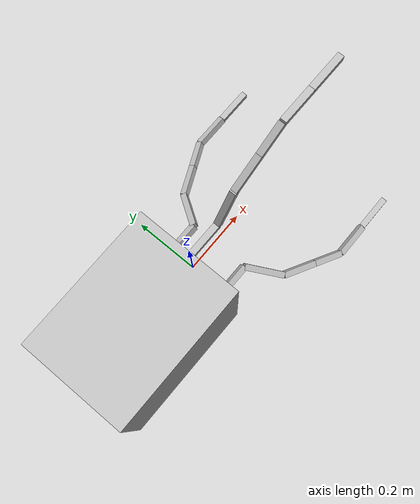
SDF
<?xml version="1.0" ?>
<sdf version="1.5">
  <model name="four_bar_sdf">
    <pose>0 0 0 0 0 0</pose>
    <self_collide>true</self_collide>
    <link name="linkROV">
      <pose>-0.2286 0 0 0 0 0</pose>
      <inertial>
        <mass>1.0</mass>
        <inertia>
          <ixx>0.0227</ixx>
          <iyy>0.0306</iyy>
          <izz>0.0269</izz>
          <ixy>0.0</ixy>
          <ixz>0.0</ixz>
          <iyz>0.0</iyz>
        </inertia>
      </inertial>
      <collision name="linkROV_collision">
        <geometry>
          <box>
            <size>0.4572 0.33805 0.39785</size>
          </box>
        </geometry>
      </collision>
      <visual name="linkROV_visual">
        <geometry>
          <box>
            <size>0.4572 0.33805 0.39785</size>
          </box>
        </geometry>
        <material>
          <color rgba="0.3 0.3 0.3 1.0"/>
        </material>
      </visual>
    </link>
    <link name="arm1link1">
      <pose>0.0575 0.1 -0.1 -0.5236 0 0 </pose>
      <inertial>
        <mass>0.575</mass>
        <inertia>
          <ixx>3.8333e-05</ixx>
          <iyy>6.5286e-04</iyy>
          <izz>6.5286e-04</izz>
          <ixy>0.0</ixy>
          <ixz>0.0</ixz>
          <iyz>0.0</iyz>
        </inertia>
      </inertial>
      <collision name="arm1link1_collision">
        <geometry>
          <box>
            <size>0.115 0.02 0.02</size>
          </box>
        </geometry>
      </collision>
      <visual name="arm1link1_visual">
        <geometry>
          <box>
            <size>0.115 0.02 0.02</size>
          </box>
        </geometry>
        <material>
          <color rgba="0.3 0.3 0.3 1.0"/>
        </material>
      </visual>
    </link>
    <link name="arm1link2">
      <pose>0.15 0.1525 -0.13031 -0.28103 0.44783 0.98279 </pose>
      <inertial>
        <mass>0.700</mass>
        <inertia>
          <ixx>4.6667e-05</ixx>
          <iyy>1.1667e-03</iyy>
          <izz>1.1667e-03</izz>
          <ixy>0.0</ixy>
          <ixz>0.0</ixz>
          <iyz>0.0</iyz>
        </inertia>
      </inertial>
      <collision name="arm1link2_collision">
        <geometry>
          <box>
            <size>0.140 0.02 0.02</size>
          </box>
        </geometry>
      </collision>
      <visual name="arm1link2_visual">
        <geometry>
          <box>
            <size>0.140 0.02 0.02</size>
          </box>
        </geometry>
        <material>
          <color rgba="0.3 0.3 0.3 1.0"/>
        </material>
      </visual>
    </link>
    <link name="arm1link3">
      <pose>0.2348 0.2299 -0.175 -0.46365 0.25268 0.46365 </pose>
      <inertial>
        <mass>0.575</mass>
        <inertia>
          <ixx>3.8333e-05</ixx>
          <iyy>6.5286e-04</iyy>
          <izz>6.5286e-04</izz>
          <ixy>0.0</ixy>
          <ixz>0.0</ixz>
          <iyz>0.0</iyz>
        </inertia>
      </inertial>
      <collision name="arm1link3_collision">
        <geometry>
          <box>
            <size>0.115 0.02 0.02</size>
          </box>
        </geometry>
      </collision>
      <visual name="arm1link3_visual">
        <geometry>
          <box>
            <size>0.115 0.02 0.02</size>
          </box>
        </geometry>
        <material>
          <color rgba="0.3 0.3 0.3 1.0"/>
        </material>
      </visual>
    </link>
    <link name="arm1link4">
      <pose>0.32789 0.27645 -0.20187 -0.46365 0.25268 0.46365 </pose>
      <inertial>
        <mass>0.500</mass>
        <inertia>
          <ixx>3.3333e-05</ixx>
          <iyy>4.3333e-04</iyy>
          <izz>4.3333e-04</izz>
          <ixy>0.0</ixy>
          <ixz>0.0</ixz>
          <iyz>0.0</iyz>
        </inertia>
      </inertial>
      <collision name="arm1link4_collision">
        <geometry>
          <box>
            <size>0.100 0.02 0.02</size>
          </box>
        </geometry>
      </collision>
      <visual name="arm1link4_visual">
        <geometry>
          <box>
            <size>0.100 0.02 0.02</size>
          </box>
        </geometry>
        <material>
          <color rgba="0.3 0.3 0.3 1.0"/>
        </material>
      </visual>
    </link>
    <link name="arm1link5">
      <pose>0.4287 0.2981 -0.21437 -0.5236 0 0 </pose>
      <inertial>
        <mass>0.575</mass>
        <inertia>
          <ixx>3.8333e-05</ixx>
          <iyy>6.5286e-04</iyy>
          <izz>6.5286e-04</izz>
          <ixy>0.0</ixy>
          <ixz>0.0</ixz>
          <iyz>0.0</iyz>
        </inertia>
      </inertial>
      <collision name="arm1link5_collision">
        <geometry>
          <box>
            <size>0.115 0.02 0.02</size>
          </box>
        </geometry>
      </collision>
      <visual name="arm1link5_visual">
        <geometry>
          <box>
            <size>0.115 0.02 0.02</size>
          </box>
        </geometry>
        <material>
          <color rgba="0.3 0.3 0.3 1.0"/>
        </material>
      </visual>
    </link>
    <link name="arm1link6">
      <pose>0.5462 0.2981 -0.21437 0 0 0 </pose>
      <inertial>
        <mass>0.600</mass>
        <inertia>
          <ixx>4.0000e-05</ixx>
          <iyy>7.4000e-04</iyy>
          <izz>7.4000e-04</izz>
          <ixy>0.0</ixy>
          <ixz>0.0</ixz>
          <iyz>0.0</iyz>
        </inertia>
      </inertial>
      <collision name="arm1link6_collision">
        <geometry>
          <box>
            <size>0.120 0.02 0.02</size>
          </box>
        </geometry>
      </collision>
      <visual name="arm1link6_visual">
        <geometry>
          <box>
            <size>0.120 0.02 0.02</size>
          </box>
        </geometry>
        <material>
          <color rgba="0.3 0.3 0.3 1.0"/>
        </material>
      </visual>
    </link>

    <link name="arm2link1">
      <pose>0.0575 -0.1 -0.1 0.5236 0 0 </pose>
      <inertial>
        <mass>0.575</mass>
        <inertia>
          <ixx>3.8333e-05</ixx>
          <iyy>6.5286e-04</iyy>
          <izz>6.5286e-04</izz>
          <ixy>0.0</ixy>
          <ixz>0.0</ixz>
          <iyz>0.0</iyz>
        </inertia>
      </inertial>
      <collision name="arm2link1_collision">
        <geometry>
          <box>
            <size>0.115 0.02 0.02</size>
          </box>
        </geometry>
      </collision>
      <visual name="arm2link1_visual">
        <geometry>
          <box>
            <size>0.115 0.02 0.02</size>
          </box>
        </geometry>
        <material>
          <color rgba="0.3 0.3 0.3 1.0"/>
        </material>
      </visual>
    </link>
    <link name="arm2link2">
      <pose>0.15 -0.1525 -0.13031 0.28103 0.44783 -0.98279 </pose>
      <inertial>
        <mass>0.700</mass>
        <inertia>
          <ixx>4.6667e-05</ixx>
          <iyy>1.1667e-03</iyy>
          <izz>1.1667e-03</izz>
          <ixy>0.0</ixy>
          <ixz>0.0</ixz>
          <iyz>0.0</iyz>
        </inertia>
      </inertial>
      <collision name="arm2link2_collision">
        <geometry>
          <box>
            <size>0.140 0.02 0.02</size>
          </box>
        </geometry>
      </collision>
      <visual name="arm2link2_visual">
        <geometry>
          <box>
            <size>0.140 0.02 0.02</size>
          </box>
        </geometry>
        <material>
          <color rgba="0.3 0.3 0.3 1.0"/>
        </material>
      </visual>
    </link>
    <link name="arm2link3">
      <pose>0.2348 -0.2299 -0.175 0.46365 0.25268 -0.46365 </pose>
      <inertial>
        <mass>0.575</mass>
        <inertia>
          <ixx>3.8333e-05</ixx>
          <iyy>6.5286e-04</iyy>
          <izz>6.5286e-04</izz>
          <ixy>0.0</ixy>
          <ixz>0.0</ixz>
          <iyz>0.0</iyz>
        </inertia>
      </inertial>
      <collision name="arm2link3_collision">
        <geometry>
          <box>
            <size>0.115 0.02 0.02</size>
          </box>
        </geometry>
      </collision>
      <visual name="arm2link3_visual">
        <geometry>
          <box>
            <size>0.115 0.02 0.02</size>
          </box>
        </geometry>
        <material>
          <color rgba="0.3 0.3 0.3 1.0"/>
        </material>
      </visual>
    </link>
    <link name="arm2link4">
      <pose>0.32789 -0.27645 -0.20187 0.46365 0.25268 -0.46365 </pose>
      <inertial>
        <mass>0.500</mass>
        <inertia>
          <ixx>3.3333e-05</ixx>
          <iyy>4.3333e-04</iyy>
          <izz>4.3333e-04</izz>
          <ixy>0.0</ixy>
          <ixz>0.0</ixz>
          <iyz>0.0</iyz>
        </inertia>
      </inertial>
      <collision name="arm2link4_collision">
        <geometry>
          <box>
            <size>0.100 0.02 0.02</size>
          </box>
        </geometry>
      </collision>
      <visual name="arm2link4_visual">
        <geometry>
          <box>
            <size>0.100 0.02 0.02</size>
          </box>
        </geometry>
        <material>
          <color rgba="0.3 0.3 0.3 1.0"/>
        </material>
      </visual>
    </link>
    <link name="arm2link5">
      <pose>0.4287 -0.2981 -0.21437 0.5236 0 0 </pose>
      <inertial>
        <mass>0.575</mass>
        <inertia>
          <ixx>3.8333e-05</ixx>
          <iyy>6.5286e-04</iyy>
          <izz>6.5286e-04</izz>
          <ixy>0.0</ixy>
          <ixz>0.0</ixz>
          <iyz>0.0</iyz>
        </inertia>
      </inertial>
      <collision name="arm2link5_collision">
        <geometry>
          <box>
            <size>0.115 0.02 0.02</size>
          </box>
        </geometry>
      </collision>
      <visual name="arm2link5_visual">
        <geometry>
          <box>
            <size>0.115 0.02 0.02</size>
          </box>
        </geometry>
        <material>
          <color rgba="0.3 0.3 0.3 1.0"/>
        </material>
      </visual>
    </link>
    <link name="arm2link6">
      <pose>0.5462 -0.2981 -0.21437 0 0 0 </pose>
      <inertial>
        <mass>0.600</mass>
        <inertia>
          <ixx>4.0000e-05</ixx>
          <iyy>7.4000e-04</iyy>
          <izz>7.4000e-04</izz>
          <ixy>0.0</ixy>
          <ixz>0.0</ixz>
          <iyz>0.0</iyz>
        </inertia>
      </inertial>
      <collision name="arm2link6_collision">
        <geometry>
          <box>
            <size>0.120 0.02 0.02</size>
          </box>
        </geometry>
      </collision>
      <visual name="arm2link6_visual">
        <geometry>
          <box>
            <size>0.120 0.02 0.02</size>
          </box>
        </geometry>
        <material>
          <color rgba="0.3 0.3 0.3 1.0"/>
        </material>
      </visual>
    </link>

    <link name="arm3link1">
      <pose>0.0575 0 0.14142 1.5708 0 0 </pose>
      <inertial>
        <mass>0.575</mass>
        <inertia>
          <ixx>3.8333e-05</ixx>
          <iyy>6.5286e-04</iyy>
          <izz>6.5286e-04</izz>
          <ixy>0.0</ixy>
          <ixz>0.0</ixz>
          <iyz>0.0</iyz>
        </inertia>
      </inertial>
      <collision name="arm3link1_collision">
        <geometry>
          <box>
            <size>0.115 0.02 0.02</size>
          </box>
        </geometry>
      </collision>
      <visual name="arm3link1_visual">
        <geometry>
          <box>
            <size>0.115 0.02 0.02</size>
          </box>
        </geometry>
        <material>
          <color rgba="0.3 0.3 0.3 1.0"/>
        </material>
      </visual>
    </link>
    <link name="arm3link2">
      <pose>0.15 3.712e-18 0.20204 1.5708 -1.0472 1.0606e-16 </pose>
      <inertial>
        <mass>0.700</mass>
        <inertia>
          <ixx>4.6667e-05</ixx>
          <iyy>1.1667e-03</iyy>
          <izz>1.1667e-03</izz>
          <ixy>0.0</ixy>
          <ixz>0.0</ixz>
          <iyz>0.0</iyz>
        </inertia>
      </inertial>
      <collision name="arm3link2_collision">
        <geometry>
          <box>
            <size>0.140 0.02 0.02</size>
          </box>
        </geometry>
      </collision>
      <visual name="arm3link2_visual">
        <geometry>
          <box>
            <size>0.140 0.02 0.02</size>
          </box>
        </geometry>
        <material>
          <color rgba="0.3 0.3 0.3 1.0"/>
        </material>
      </visual>
    </link>
    <link name="arm3link3">
      <pose>0.2348 9.1845e-18 0.29141 1.5708 -0.5236 3.5353e-17 </pose>
      <inertial>
        <mass>0.575</mass>
        <inertia>
          <ixx>3.8333e-05</ixx>
          <iyy>6.5286e-04</iyy>
          <izz>6.5286e-04</izz>
          <ixy>0.0</ixy>
          <ixz>0.0</ixz>
          <iyz>0.0</iyz>
        </inertia>
      </inertial>
      <collision name="arm3link3_collision">
        <geometry>
          <box>
            <size>0.115 0.02 0.02</size>
          </box>
        </geometry>
      </collision>
      <visual name="arm3link3_visual">
        <geometry>
          <box>
            <size>0.115 0.02 0.02</size>
          </box>
        </geometry>
        <material>
          <color rgba="0.3 0.3 0.3 1.0"/>
        </material>
      </visual>
    </link>
    <link name="arm3link4">
      <pose>0.32789 1.2476e-17 0.34516 1.5708 -0.5236 3.5353e-17 </pose>
      <inertial>
        <mass>0.500</mass>
        <inertia>
          <ixx>3.3333e-05</ixx>
          <iyy>4.3333e-04</iyy>
          <izz>4.3333e-04</izz>
          <ixy>0.0</ixy>
          <ixz>0.0</ixz>
          <iyz>0.0</iyz>
        </inertia>
      </inertial>
      <collision name="arm3link4_collision">
        <geometry>
          <box>
            <size>0.100 0.02 0.02</size>
          </box>
        </geometry>
      </collision>
      <visual name="arm3link4_visual">
        <geometry>
          <box>
            <size>0.100 0.02 0.02</size>
          </box>
        </geometry>
        <material>
          <color rgba="0.3 0.3 0.3 1.0"/>
        </material>
      </visual>
    </link>
    <link name="arm3link5">
      <pose>0.4287 1.4007e-17 0.37016 1.5708 -5.5511e-17 0 </pose>
      <inertial>
        <mass>0.575</mass>
        <inertia>
          <ixx>3.8333e-05</ixx>
          <iyy>6.5286e-04</iyy>
          <izz>6.5286e-04</izz>
          <ixy>0.0</ixy>
          <ixz>0.0</ixz>
          <iyz>0.0</iyz>
        </inertia>
      </inertial>
      <collision name="arm3link5_collision">
        <geometry>
          <box>
            <size>0.115 0.02 0.02</size>
          </box>
        </geometry>
      </collision>
      <visual name="arm3link5_visual">
        <geometry>
          <box>
            <size>0.115 0.02 0.02</size>
          </box>
        </geometry>
        <material>
          <color rgba="0.3 0.3 0.3 1.0"/>
        </material>
      </visual>
    </link>
    <link name="arm3link6">
      <pose>0.5462 1.4007e-17 0.37016 0 -5.5511e-17 0 </pose>
      <inertial>
        <mass>0.600</mass>
        <inertia>
          <ixx>4.0000e-05</ixx>
          <iyy>7.4000e-04</iyy>
          <izz>7.4000e-04</izz>
          <ixy>0.0</ixy>
          <ixz>0.0</ixz>
          <iyz>0.0</iyz>
        </inertia>
      </inertial>
      <collision name="arm3link6_collision">
        <geometry>
          <box>
            <size>0.120 0.02 0.02</size>
          </box>
        </geometry>
      </collision>
      <visual name="arm3link6_visual">
        <geometry>
          <box>
            <size>0.120 0.02 0.02</size>
          </box>
        </geometry>
        <material>
          <color rgba="0.3 0.3 0.3 1.0"/>
        </material>
      </visual>
    </link>

    <joint name="arm1_jointgrip" type="fixed">
      <pose>0 0 0 0 0 0</pose>
      <parent>world</parent>
      <child>arm1link6</child>
    </joint>
    <joint name="arm1_joint1" type="revolute">
      <pose>0 0 0 0 0 0</pose>
      <parent>linkROV</parent>
      <child>arm1link1</child>
      <axis>
        <xyz>1 0 0</xyz>
        <dynamics>
          <damping>0.05</damping>
          <friction>0</friction>
          <spring_reference>0</spring_reference>
          <spring_stiffness>10.0</spring_stiffness>
        </dynamics>
      </axis>
    </joint>
    <joint name="arm1_joint2" type="revolute">
      <pose>-0.07 0 0 0 0 0</pose>
      <parent>arm1link1</parent>
      <child>arm1link2</child>
      <axis>
        <xyz>0 0 1</xyz>
        <dynamics>
          <damping>0.05</damping>
          <friction>0</friction>
          <spring_reference>0</spring_reference>
          <spring_stiffness>10.0</spring_stiffness>
        </dynamics>
      </axis>
    </joint>
    <joint name="arm1_joint3" type="revolute">
      <pose>-0.0575 0 0 0 0 0</pose>
      <parent>arm1link2</parent>
      <child>arm1link3</child>
      <axis>
        <xyz>0 0 1</xyz>
        <dynamics>
          <damping>0.05</damping>
          <friction>0</friction>
          <spring_reference>0</spring_reference>
          <spring_stiffness>10.0</spring_stiffness>
        </dynamics>
      </axis>
    </joint>
    <joint name="arm1_joint4" type="revolute">
      <pose>-0.05 0 0 0 0 0</pose>
      <parent>arm1link3</parent>
      <child>arm1link4</child>
      <axis>
        <xyz>1 0 0</xyz>
        <dynamics>
          <damping>0.05</damping>
          <friction>0</friction>
          <spring_reference>0</spring_reference>
          <spring_stiffness>10.0</spring_stiffness>
        </dynamics>
      </axis>
    </joint>
    <joint name="arm1_joint5" type="revolute">
      <pose>-0.0575 0 0 0 0 0</pose>
      <parent>arm1link4</parent>
      <child>arm1link5</child>
      <axis>
        <xyz>0 0 1</xyz>
        <dynamics>
          <damping>0.05</damping>
          <friction>0</friction>
          <spring_reference>0</spring_reference>
          <spring_stiffness>10.0</spring_stiffness>
        </dynamics>
      </axis>
    </joint>
    <joint name="arm1_joint6" type="revolute">
      <pose>-0.06 0 0 0 0 0</pose>
      <parent>arm1link5</parent>
      <child>arm1link6</child>
      <axis>
        <xyz>1 0 0</xyz>
        <dynamics>
          <damping>0.05</damping>
          <friction>0</friction>
          <spring_reference>0</spring_reference>
          <spring_stiffness>10.0</spring_stiffness>
        </dynamics>
      </axis>
    </joint>

    <joint name="arm2_jointgrip" type="fixed">
      <pose>0 0 0 0 0 0</pose>
      <parent>world</parent>
      <child>arm2link6</child>
    </joint>
    <joint name="arm2_joint1" type="revolute">
      <pose>0 0 0 0 0 0</pose>
      <parent>linkROV</parent>
      <child>arm2link1</child>
      <axis>
        <xyz>1 0 0</xyz>
        <dynamics>
          <damping>0.05</damping>
          <friction>0</friction>
          <spring_reference>0</spring_reference>
          <spring_stiffness>10.0</spring_stiffness>
        </dynamics>
      </axis>
    </joint>
    <joint name="arm2_joint2" type="revolute">
      <pose>-0.07 0 0 0 0 0</pose>
      <parent>arm2link1</parent>
      <child>arm2link2</child>
      <axis>
        <xyz>0 0 1</xyz>
        <dynamics>
          <damping>0.05</damping>
          <friction>0</friction>
          <spring_reference>0</spring_reference>
          <spring_stiffness>10.0</spring_stiffness>
        </dynamics>
      </axis>
    </joint>
    <joint name="arm2_joint3" type="revolute">
      <pose>-0.0575 0 0 0 0 0</pose>
      <parent>arm2link2</parent>
      <child>arm2link3</child>
      <axis>
        <xyz>0 0 1</xyz>
        <dynamics>
          <damping>0.05</damping>
          <friction>0</friction>
          <spring_reference>0</spring_reference>
          <spring_stiffness>10.0</spring_stiffness>
        </dynamics>
      </axis>
    </joint>
    <joint name="arm2_joint4" type="revolute">
      <pose>-0.05 0 0 0 0 0</pose>
      <parent>arm2link3</parent>
      <child>arm2link4</child>
      <axis>
        <xyz>1 0 0</xyz>
        <dynamics>
          <damping>0.05</damping>
          <friction>0</friction>
          <spring_reference>0</spring_reference>
          <spring_stiffness>10.0</spring_stiffness>
        </dynamics>
      </axis>
    </joint>
    <joint name="arm2_joint5" type="revolute">
      <pose>-0.0575 0 0 0 0 0</pose>
      <parent>arm2link4</parent>
      <child>arm2link5</child>
      <axis>
        <xyz>0 0 1</xyz>
        <dynamics>
          <damping>0.05</damping>
          <friction>0</friction>
          <spring_reference>0</spring_reference>
          <spring_stiffness>10.0</spring_stiffness>
        </dynamics>
      </axis>
    </joint>
    <joint name="arm2_joint6" type="revolute">
      <pose>-0.06 0 0 0 0 0</pose>
      <parent>arm2link5</parent>
      <child>arm2link6</child>
      <axis>
        <xyz>1 0 0</xyz>
        <dynamics>
          <damping>0.05</damping>
          <friction>0</friction>
          <spring_reference>0</spring_reference>
          <spring_stiffness>10.0</spring_stiffness>
        </dynamics>
      </axis>
    </joint>

    <joint name="arm3_jointgrip" type="fixed">
      <pose>0 0 0 0 0 0</pose>
      <parent>world</parent>
      <child>arm3link6</child>
    </joint>
    <joint name="arm3_joint1" type="revolute">
      <pose>0 0 0 0 0 0</pose>
      <parent>linkROV</parent>
      <child>arm3link1</child>
      <axis>
        <xyz>1 0 0</xyz>
        <dynamics>
          <damping>0.05</damping>
          <friction>0</friction>
          <spring_reference>0</spring_reference>
          <spring_stiffness>10.0</spring_stiffness>
        </dynamics>
      </axis>
    </joint>
    <joint name="arm3_joint2" type="revolute">
      <pose>-0.07 0 0 0 0 0</pose>
      <parent>arm3link1</parent>
      <child>arm3link2</child>
      <axis>
        <xyz>0 0 1</xyz>
        <dynamics>
          <damping>0.05</damping>
          <friction>0</friction>
          <spring_reference>0</spring_reference>
          <spring_stiffness>10.0</spring_stiffness>
        </dynamics>
      </axis>
    </joint>
    <joint name="arm3_joint3" type="revolute">
      <pose>-0.0575 0 0 0 0 0</pose>
      <parent>arm3link2</parent>
      <child>arm3link3</child>
      <axis>
        <xyz>0 0 1</xyz>
        <dynamics>
          <damping>0.05</damping>
          <friction>0</friction>
          <spring_reference>0</spring_reference>
          <spring_stiffness>10.0</spring_stiffness>
        </dynamics>
      </axis>
    </joint>
    <joint name="arm3_joint4" type="revolute">
      <pose>-0.05 0 0 0 0 0</pose>
      <parent>arm3link3</parent>
      <child>arm3link4</child>
      <axis>
        <xyz>1 0 0</xyz>
        <dynamics>
          <damping>0.05</damping>
          <friction>0</friction>
          <spring_reference>0</spring_reference>
          <spring_stiffness>10.0</spring_stiffness>
        </dynamics>
      </axis>
    </joint>
    <joint name="arm3_joint5" type="revolute">
      <pose>-0.0575 0 0 0 0 0</pose>
      <parent>arm3link4</parent>
      <child>arm3link5</child>
      <axis>
        <xyz>0 0 1</xyz>
        <dynamics>
          <damping>0.05</damping>
          <friction>0</friction>
          <spring_reference>0</spring_reference>
          <spring_stiffness>10.0</spring_stiffness>
        </dynamics>
      </axis>
    </joint>
    <joint name="arm3_joint6" type="revolute">
      <pose>-0.06 0 0 0 0 0</pose>
      <parent>arm3link5</parent>
      <child>arm3link6</child>
      <axis>
        <xyz>1 0 0</xyz>
        <dynamics>
          <damping>0.05</damping>
          <friction>0</friction>
          <spring_reference>0</spring_reference>
          <spring_stiffness>10.0</spring_stiffness>
        </dynamics>
      </axis>
    </joint>
  </model>
</sdf>
